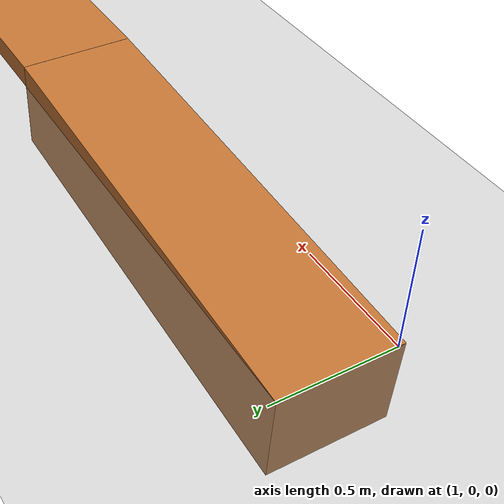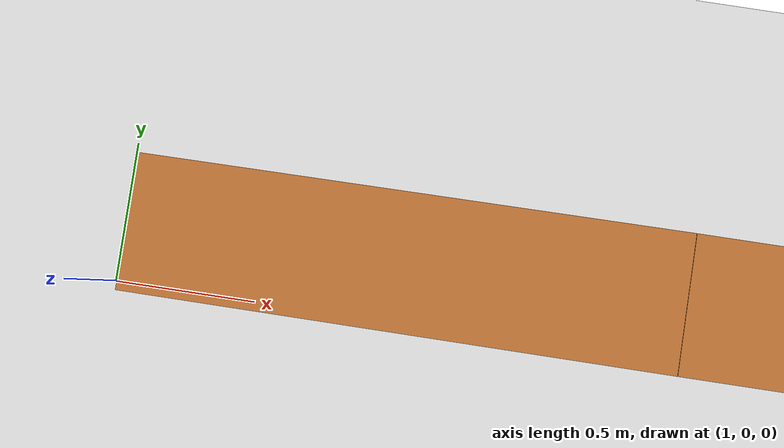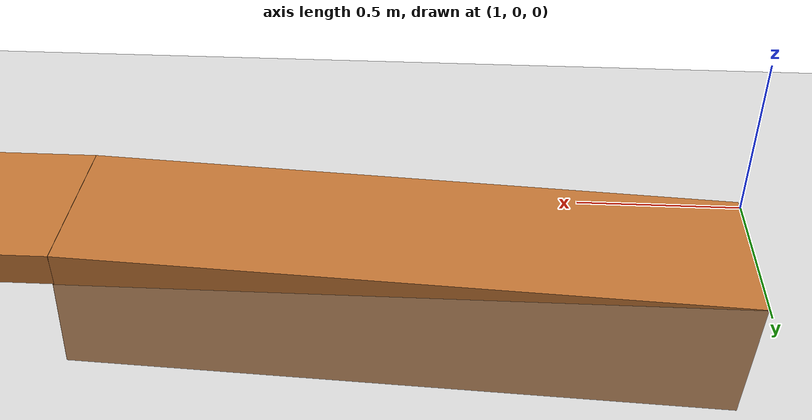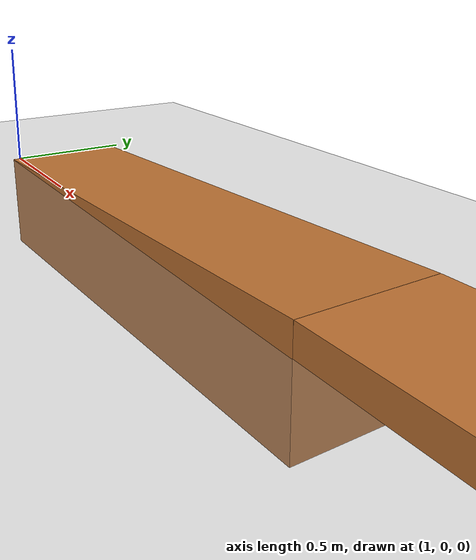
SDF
<?xml version="1.0"?>
<sdf version="1.8">
  <world name="ledge">

    <plugin filename="gz-sim-physics-system" name="gz::sim::systems::Physics"/>
    <plugin filename="gz-sim-user-commands-system" name="gz::sim::systems::UserCommands"/>
    <plugin filename="gz-sim-scene-broadcaster-system" name="gz::sim::systems::SceneBroadcaster"/>
    <plugin filename="gz-sim-sensors-system" name="gz::sim::systems::Sensors">
      <render_engine>ogre2</render_engine>
    </plugin>
    <plugin filename="gz-sim-imu-system" name="gz::sim::systems::Imu"/>

    <physics name="1ms" type="dart">
      <max_step_size>0.001</max_step_size>
      <real_time_factor>1.0</real_time_factor>
    </physics>

    <gravity>0 0 -9.80665</gravity>

    <light type="directional" name="sun">
      <cast_shadows>true</cast_shadows>
      <pose>0 0 10 0 0 0</pose>
      <diffuse>0.9 0.9 0.9 1</diffuse>
      <specular>0.25 0.25 0.25 1</specular>
      <direction>-0.5 0.2 -0.9</direction>
    </light>

    <model name="ground_plane">
      <static>true</static>
      <link name="link">
        <collision name="collision">
          <geometry><plane><normal>0 0 1</normal><size>200 200</size></plane></geometry>
          <surface><friction><ode><mu>1.0</mu><mu2>1.0</mu2></ode></friction></surface>
        </collision>
        <visual name="visual">
          <geometry><plane><normal>0 0 1</normal><size>200 200</size></plane></geometry>
          <material>
            <ambient>0.4 0.4 0.4 1</ambient>
            <diffuse>0.55 0.55 0.55 1</diffuse>
          </material>
        </visual>
      </link>
    </model>

    <!-- wedge: top face runs from ground at x=1.0 up to 10 cm at x=3.0 -->
    <model name="ledge_ramp">
      <static>true</static>
      <pose>2.01 0.218 -0.1497 0 -0.05 0</pose>
      <link name="link">
        <collision name="collision">
          <geometry><box><size>2.0 0.5 0.4</size></box></geometry>
          <surface><friction><ode><mu>1.0</mu><mu2>1.0</mu2></ode></friction></surface>
        </collision>
        <visual name="visual">
          <geometry><box><size>2.0 0.5 0.4</size></box></geometry>
          <material><ambient>0.75 0.45 0.2 1</ambient><diffuse>0.75 0.45 0.2 1</diffuse></material>
        </visual>
      </link>
    </model>

    <!-- the ledge itself: 10 cm high, from x = 3 to x = 19 -->
    <model name="ledge_top">
      <static>true</static>
      <pose>11.0 0.218 0.05 0 0 0</pose>
      <link name="link">
        <collision name="collision">
          <geometry><box><size>16.0 0.5 0.10</size></box></geometry>
          <surface><friction><ode><mu>1.0</mu><mu2>1.0</mu2></ode></friction></surface>
        </collision>
        <visual name="visual">
          <geometry><box><size>16.0 0.5 0.10</size></box></geometry>
          <material><ambient>0.75 0.45 0.2 1</ambient><diffuse>0.75 0.45 0.2 1</diffuse></material>
        </visual>
      </link>
    </model>

  </world>
</sdf>
